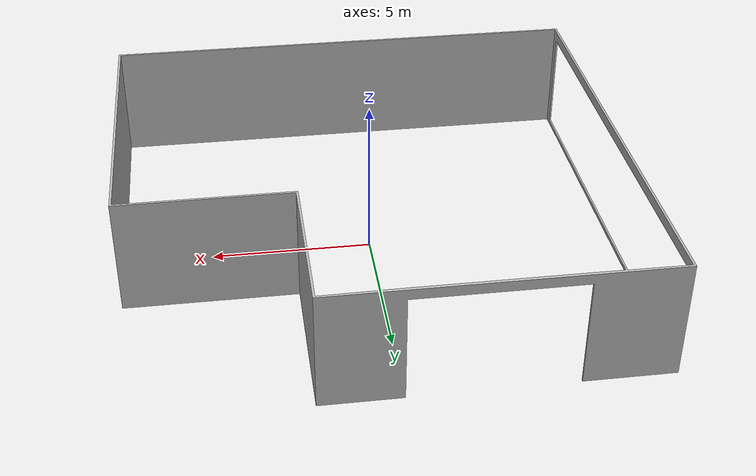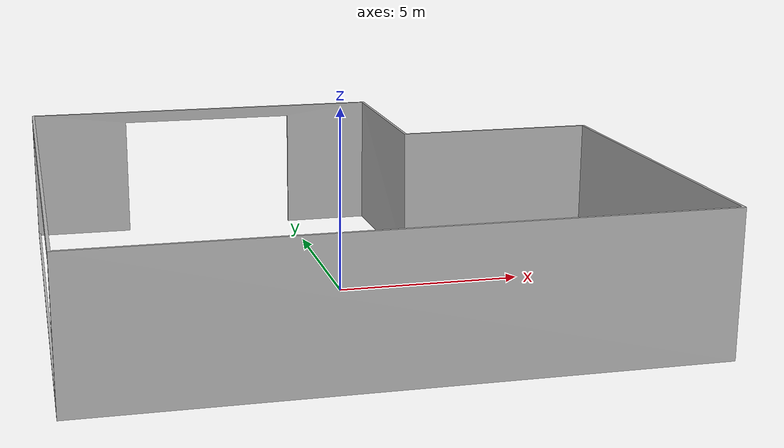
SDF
<?xml version="1.0" ?>
<sdf version="1.6">
  <model name="aws_robomaker_retail_RetailShopWall_01">
    <link name="link">
      <inertial>
        <mass>1</mass>
      </inertial>
      <collision name="collision">
        <geometry>
          <mesh>
            <uri>file://models/aws_robomaker_retail_RetailShopWall_01/meshes/aws_RetailShopWall_01_collision.DAE</uri>
            <scale>1 1 1</scale>
          </mesh>
        </geometry>
      </collision>
      <visual name="visual">
	    <geometry>
          <mesh>
            <uri>file://models/aws_robomaker_retail_RetailShopWall_01/meshes/aws_RetailShopWall_01_visual.DAE</uri>
          </mesh>
        </geometry>
        <meta>
          <layer>2</layer>
        </meta>
      </visual>
    </link>
	<static>1</static>
  </model>
</sdf>
